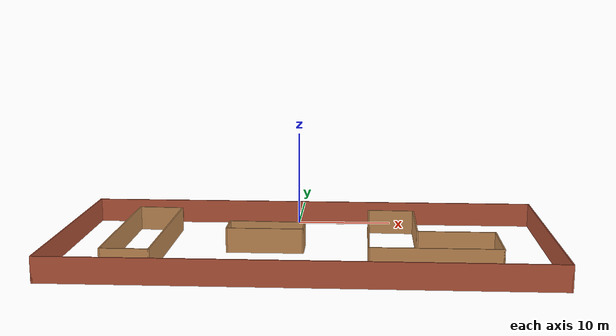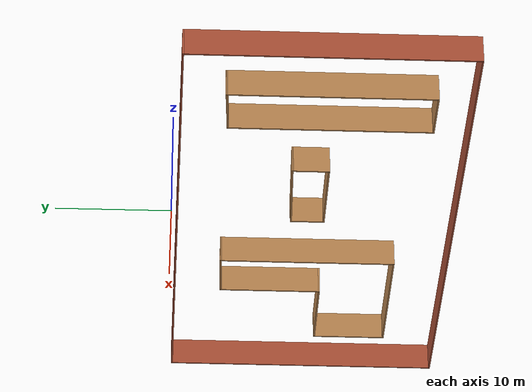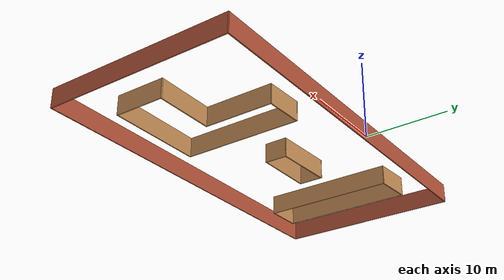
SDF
<?xml version='1.0'?>
<sdf version='1.6'>
  <model name='larger_room'>
    <pose frame=''>1.4489 -12.545 0 0 -0 0</pose>
    <link name='Wall_0'>
      <collision name='Wall_0_Collision'>
        <geometry>
          <box>
            <size>47.75 0.15 2.5</size>
          </box>
        </geometry>
        <pose frame=''>0 0 1.25 0 -0 0</pose>
      </collision>
      <visual name='Wall_0_Visual'>
        <pose frame=''>0 0 1.25 0 -0 0</pose>
        <geometry>
          <box>
            <size>47.75 0.15 2.5</size>
          </box>
        </geometry>
        <material>
          <script>
            <uri>file://media/materials/scripts/gazebo.material</uri>
            <name>Gazebo/Bricks</name>
          </script>
          <ambient>1 1 1 1</ambient>
        </material>
        <meta>
          <layer>0</layer>
        </meta>
      </visual>
      <pose frame=''>1e-06 12.05 0 0 -0 0</pose>
    </link>
    <link name='Wall_10'>
      <collision name='Wall_10_Collision'>
        <geometry>
          <box>
            <size>17.25 0.15 2.5</size>
          </box>
        </geometry>
        <pose frame=''>0 0 1.25 0 -0 0</pose>
      </collision>
      <visual name='Wall_10_Visual'>
        <pose frame=''>0 0 1.25 0 -0 0</pose>
        <geometry>
          <box>
            <size>17.25 0.15 2.5</size>
          </box>
        </geometry>
        <material>
          <script>
            <uri>file://media/materials/scripts/gazebo.material</uri>
            <name>Gazebo/Wood</name>
          </script>
          <ambient>1 1 1 1</ambient>
        </material>
        <meta>
          <layer>0</layer>
        </meta>
      </visual>
      <pose frame=''>-13.8649 -0.425391 0 0 -0 1.5708</pose>
    </link>
    <link name='Wall_12'>
      <collision name='Wall_12_Collision'>
        <geometry>
          <box>
            <size>4.75679 0.15 2.5</size>
          </box>
        </geometry>
        <pose frame=''>0 0 1.25 0 -0 0</pose>
      </collision>
      <visual name='Wall_12_Visual'>
        <pose frame=''>0 0 1.25 0 -0 0</pose>
        <geometry>
          <box>
            <size>4.75679 0.15 2.5</size>
          </box>
        </geometry>
        <material>
          <script>
            <uri>file://media/materials/scripts/gazebo.material</uri>
            <name>Gazebo/Wood</name>
          </script>
          <ambient>1 1 1 1</ambient>
        </material>
        <meta>
          <layer>0</layer>
        </meta>
      </visual>
      <pose frame=''>-16.1649 8.24961 0 0 0 -0.054294</pose>
    </link>
    <link name='Wall_14'>
      <collision name='Wall_14_Collision'>
        <geometry>
          <box>
            <size>15.5 0.15 2.5</size>
          </box>
        </geometry>
        <pose frame=''>0 0 1.25 0 -0 0</pose>
      </collision>
      <visual name='Wall_14_Visual'>
        <pose frame=''>0 0 1.25 0 -0 0</pose>
        <geometry>
          <box>
            <size>15.5 0.15 2.5</size>
          </box>
        </geometry>
        <material>
          <script>
            <uri>file://media/materials/scripts/gazebo.material</uri>
            <name>Gazebo/Wood</name>
          </script>
          <ambient>1 1 1 1</ambient>
        </material>
        <meta>
          <layer>0</layer>
        </meta>
      </visual>
      <pose frame=''>6.22417 0.38044 0 0 0 -1.5708</pose>
    </link>
    <link name='Wall_15'>
      <collision name='Wall_15_Collision'>
        <geometry>
          <box>
            <size>12.5 0.15 2.5</size>
          </box>
        </geometry>
        <pose frame=''>0 0 1.25 0 -0 0</pose>
      </collision>
      <visual name='Wall_15_Visual'>
        <pose frame=''>0 0 1.25 0 -0 0</pose>
        <geometry>
          <box>
            <size>12.5 0.15 2.5</size>
          </box>
        </geometry>
        <material>
          <script>
            <uri>file://media/materials/scripts/gazebo.material</uri>
            <name>Gazebo/Wood</name>
          </script>
          <ambient>1 1 1 1</ambient>
        </material>
        <meta>
          <layer>0</layer>
        </meta>
      </visual>
      <pose frame=''>12.3992 -7.29456 0 0 -0 0</pose>
    </link>
    <link name='Wall_16'>
      <collision name='Wall_16_Collision'>
        <geometry>
          <box>
            <size>6.5 0.15 2.5</size>
          </box>
        </geometry>
        <pose frame=''>0 0 1.25 0 -0 0</pose>
      </collision>
      <visual name='Wall_16_Visual'>
        <pose frame=''>0 0 1.25 0 -0 0</pose>
        <geometry>
          <box>
            <size>6.5 0.15 2.5</size>
          </box>
        </geometry>
        <material>
          <script>
            <uri>file://media/materials/scripts/gazebo.material</uri>
            <name>Gazebo/Wood</name>
          </script>
          <ambient>1 1 1 1</ambient>
        </material>
        <meta>
          <layer>0</layer>
        </meta>
      </visual>
      <pose frame=''>18.5742 -4.11956 0 0 -0 1.5708</pose>
    </link>
    <link name='Wall_17'>
      <collision name='Wall_17_Collision'>
        <geometry>
          <box>
            <size>7.75 0.15 2.5</size>
          </box>
        </geometry>
        <pose frame=''>0 0 1.25 0 -0 0</pose>
      </collision>
      <visual name='Wall_17_Visual'>
        <pose frame=''>0 0 1.25 0 -0 0</pose>
        <geometry>
          <box>
            <size>7.75 0.15 2.5</size>
          </box>
        </geometry>
        <material>
          <script>
            <uri>file://media/materials/scripts/gazebo.material</uri>
            <name>Gazebo/Wood</name>
          </script>
          <ambient>1 1 1 1</ambient>
        </material>
        <meta>
          <layer>0</layer>
        </meta>
      </visual>
      <pose frame=''>14.7742 -0.94456 0 0 -0 3.14159</pose>
    </link>
    <link name='Wall_18'>
      <collision name='Wall_18_Collision'>
        <geometry>
          <box>
            <size>9 0.15 2.5</size>
          </box>
        </geometry>
        <pose frame=''>0 0 1.25 0 -0 0</pose>
      </collision>
      <visual name='Wall_18_Visual'>
        <pose frame=''>0 0 1.25 0 -0 0</pose>
        <geometry>
          <box>
            <size>9 0.15 2.5</size>
          </box>
        </geometry>
        <material>
          <script>
            <uri>file://media/materials/scripts/gazebo.material</uri>
            <name>Gazebo/Wood</name>
          </script>
          <ambient>1 1 1 1</ambient>
        </material>
        <meta>
          <layer>0</layer>
        </meta>
      </visual>
      <pose frame=''>10.9742 3.48044 0 0 -0 1.5708</pose>
    </link>
    <link name='Wall_19'>
      <collision name='Wall_19_Collision'>
        <geometry>
          <box>
            <size>4.90237 0.15 2.5</size>
          </box>
        </geometry>
        <pose frame=''>0 0 1.25 0 -0 0</pose>
      </collision>
      <visual name='Wall_19_Visual'>
        <pose frame=''>0 0 1.25 0 -0 0</pose>
        <geometry>
          <box>
            <size>4.90237 0.15 2.5</size>
          </box>
        </geometry>
        <material>
          <script>
            <uri>file://media/materials/scripts/gazebo.material</uri>
            <name>Gazebo/Wood</name>
          </script>
          <ambient>1 1 1 1</ambient>
        </material>
        <meta>
          <layer>0</layer>
        </meta>
      </visual>
      <pose frame=''>8.59917 7.98044 0 0 -0 3.11002</pose>
    </link>
    <link name='Wall_21'>
      <collision name='Wall_21_Collision'>
        <geometry>
          <box>
            <size>3.25 0.15 2.5</size>
          </box>
        </geometry>
        <pose frame=''>0 0 1.25 0 -0 0</pose>
      </collision>
      <visual name='Wall_21_Visual'>
        <pose frame=''>0 0 1.25 0 -0 0</pose>
        <geometry>
          <box>
            <size>3.25 0.15 2.5</size>
          </box>
        </geometry>
        <material>
          <script>
            <uri>file://media/materials/scripts/gazebo.material</uri>
            <name>Gazebo/Wood</name>
          </script>
          <ambient>1 1 1 1</ambient>
        </material>
        <meta>
          <layer>0</layer>
        </meta>
      </visual>
      <pose frame=''>-7.84734 0.876838 0 0 0 -1.5708</pose>
    </link>
    <link name='Wall_22'>
      <collision name='Wall_22_Collision'>
        <geometry>
          <box>
            <size>7.75 0.15 2.5</size>
          </box>
        </geometry>
        <pose frame=''>0 0 1.25 0 -0 0</pose>
      </collision>
      <visual name='Wall_22_Visual'>
        <pose frame=''>0 0 1.25 0 -0 0</pose>
        <geometry>
          <box>
            <size>7.75 0.15 2.5</size>
          </box>
        </geometry>
        <material>
          <script>
            <uri>file://media/materials/scripts/gazebo.material</uri>
            <name>Gazebo/Wood</name>
          </script>
          <ambient>1 1 1 1</ambient>
        </material>
        <meta>
          <layer>0</layer>
        </meta>
      </visual>
      <pose frame=''>-4.04734 -0.673162 0 0 -0 0</pose>
    </link>
    <link name='Wall_23'>
      <collision name='Wall_23_Collision'>
        <geometry>
          <box>
            <size>3 0.15 2.5</size>
          </box>
        </geometry>
        <pose frame=''>0 0 1.25 0 -0 0</pose>
      </collision>
      <visual name='Wall_23_Visual'>
        <pose frame=''>0 0 1.25 0 -0 0</pose>
        <geometry>
          <box>
            <size>3 0.15 2.5</size>
          </box>
        </geometry>
        <material>
          <script>
            <uri>file://media/materials/scripts/gazebo.material</uri>
            <name>Gazebo/Wood</name>
          </script>
          <ambient>1 1 1 1</ambient>
        </material>
        <meta>
          <layer>0</layer>
        </meta>
      </visual>
      <pose frame=''>-0.247338 0.751838 0 0 -0 1.5708</pose>
    </link>
    <link name='Wall_24'>
      <collision name='Wall_24_Collision'>
        <geometry>
          <box>
            <size>7.75411 0.15 2.5</size>
          </box>
        </geometry>
        <pose frame=''>0 0 1.25 0 -0 0</pose>
      </collision>
      <visual name='Wall_24_Visual'>
        <pose frame=''>0 0 1.25 0 -0 0</pose>
        <geometry>
          <box>
            <size>7.75411 0.15 2.5</size>
          </box>
        </geometry>
        <material>
          <script>
            <uri>file://media/materials/scripts/gazebo.material</uri>
            <name>Gazebo/Wood</name>
          </script>
          <ambient>1 1 1 1</ambient>
        </material>
        <meta>
          <layer>0</layer>
        </meta>
      </visual>
      <pose frame=''>-4.04734 2.30184 0 0 -0 3.10871</pose>
    </link>
    <link name='Wall_4'>
      <collision name='Wall_4_Collision'>
        <geometry>
          <box>
            <size>24.25 0.15 2.5</size>
          </box>
        </geometry>
        <pose frame=''>0 0 1.25 0 -0 0</pose>
      </collision>
      <visual name='Wall_4_Visual'>
        <pose frame=''>0 0 1.25 0 -0 0</pose>
        <geometry>
          <box>
            <size>24.25 0.15 2.5</size>
          </box>
        </geometry>
        <material>
          <script>
            <uri>file://media/materials/scripts/gazebo.material</uri>
            <name>Gazebo/Bricks</name>
          </script>
          <ambient>1 1 1 1</ambient>
        </material>
        <meta>
          <layer>0</layer>
        </meta>
      </visual>
      <pose frame=''>-23.8 0 0 0 0 -1.5708</pose>
    </link>
    <link name='Wall_5'>
      <collision name='Wall_5_Collision'>
        <geometry>
          <box>
            <size>47.75 0.15 2.5</size>
          </box>
        </geometry>
        <pose frame=''>0 0 1.25 0 -0 0</pose>
      </collision>
      <visual name='Wall_5_Visual'>
        <pose frame=''>0 0 1.25 0 -0 0</pose>
        <geometry>
          <box>
            <size>47.75 0.15 2.5</size>
          </box>
        </geometry>
        <material>
          <script>
            <uri>file://media/materials/scripts/gazebo.material</uri>
            <name>Gazebo/Bricks</name>
          </script>
          <ambient>1 1 1 1</ambient>
        </material>
        <meta>
          <layer>0</layer>
        </meta>
      </visual>
      <pose frame=''>1e-06 -12.05 0 0 -0 0</pose>
    </link>
    <link name='Wall_6'>
      <collision name='Wall_6_Collision'>
        <geometry>
          <box>
            <size>24.25 0.15 2.5</size>
          </box>
        </geometry>
        <pose frame=''>0 0 1.25 0 -0 0</pose>
      </collision>
      <visual name='Wall_6_Visual'>
        <pose frame=''>0 0 1.25 0 -0 0</pose>
        <geometry>
          <box>
            <size>24.25 0.15 2.5</size>
          </box>
        </geometry>
        <material>
          <script>
            <uri>file://media/materials/scripts/gazebo.material</uri>
            <name>Gazebo/Bricks</name>
          </script>
          <ambient>1 1 1 1</ambient>
        </material>
        <meta>
          <layer>0</layer>
        </meta>
      </visual>
      <pose frame=''>23.8 0 0 0 -0 1.5708</pose>
    </link>
    <link name='Wall_8'>
      <collision name='Wall_8_Collision'>
        <geometry>
          <box>
            <size>17.5 0.15 2.5</size>
          </box>
        </geometry>
        <pose frame=''>0 0 1.25 0 -0 0</pose>
      </collision>
      <visual name='Wall_8_Visual'>
        <pose frame=''>0 0 1.25 0 -0 0</pose>
        <geometry>
          <box>
            <size>17.5 0.15 2.5</size>
          </box>
        </geometry>
        <material>
          <script>
            <uri>file://media/materials/scripts/gazebo.material</uri>
            <name>Gazebo/Wood</name>
          </script>
          <ambient>1 1 1 1</ambient>
        </material>
        <meta>
          <layer>0</layer>
        </meta>
      </visual>
      <pose frame=''>-18.4649 -0.300391 0 0 0 -1.5708</pose>
    </link>
    <link name='Wall_9'>
      <collision name='Wall_9_Collision'>
        <geometry>
          <box>
            <size>4.75 0.15 2.5</size>
          </box>
        </geometry>
        <pose frame=''>0 0 1.25 0 -0 0</pose>
      </collision>
      <visual name='Wall_9_Visual'>
        <pose frame=''>0 0 1.25 0 -0 0</pose>
        <geometry>
          <box>
            <size>4.75 0.15 2.5</size>
          </box>
        </geometry>
        <material>
          <script>
            <uri>file://media/materials/scripts/gazebo.material</uri>
            <name>Gazebo/Wood</name>
          </script>
          <ambient>1 1 1 1</ambient>
        </material>
        <meta>
          <layer>0</layer>
        </meta>
      </visual>
      <pose frame=''>-16.1649 -8.97539 0 0 -0 0</pose>
    </link>
    <static>1</static>
  </model>
</sdf>
